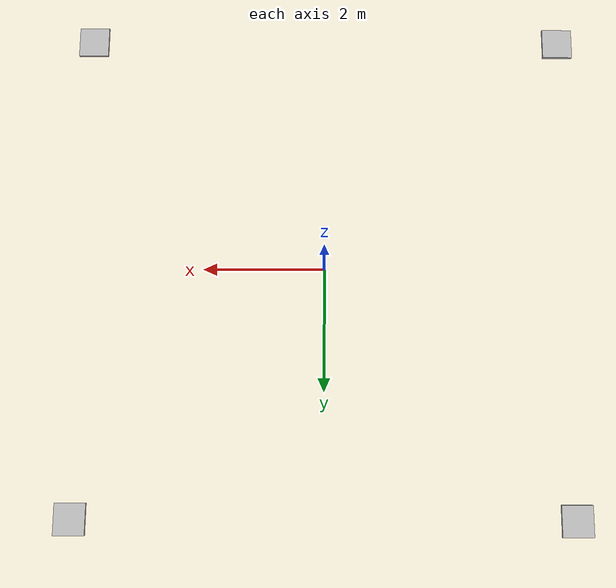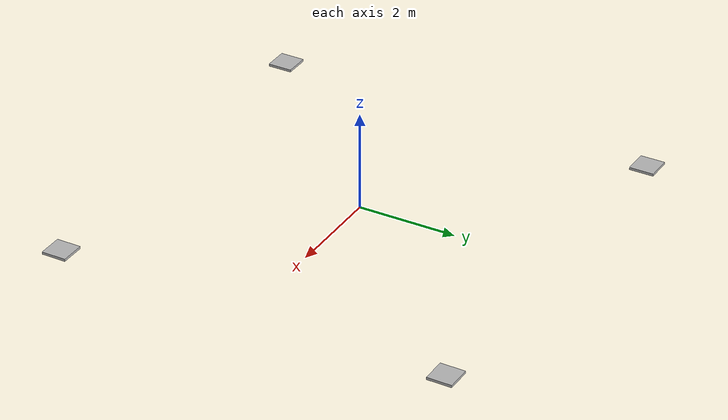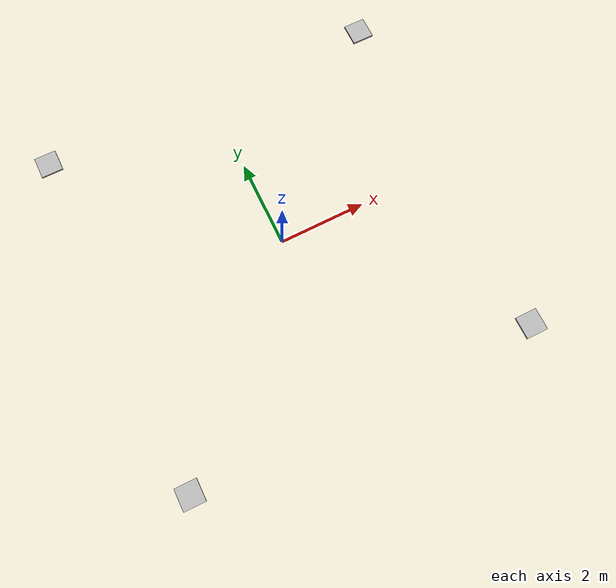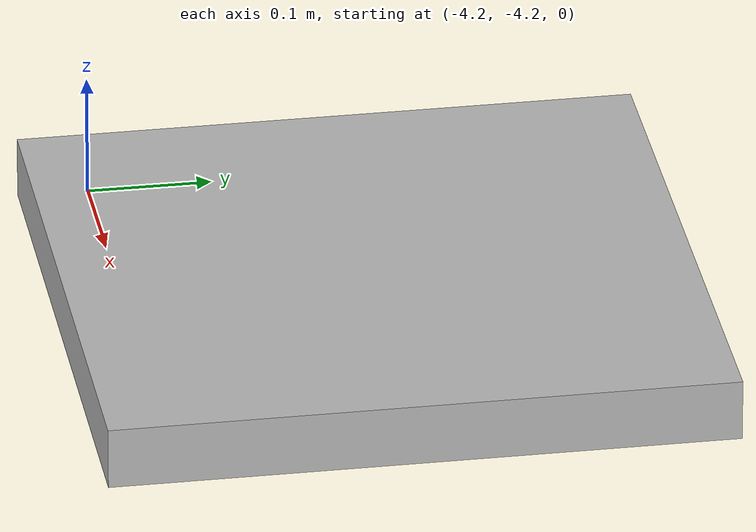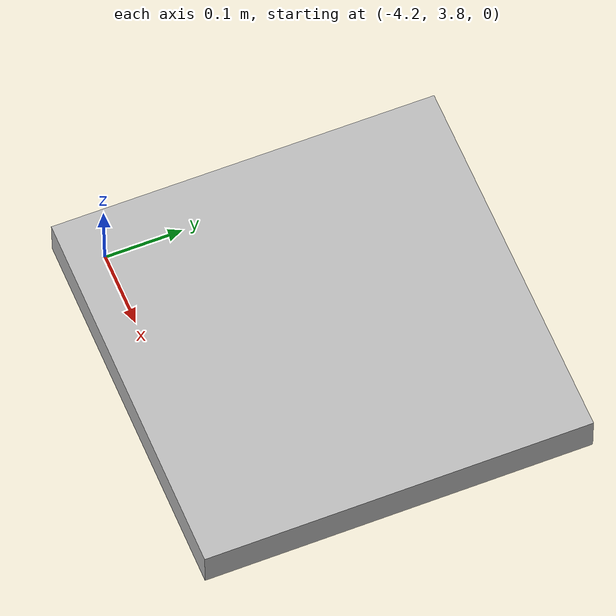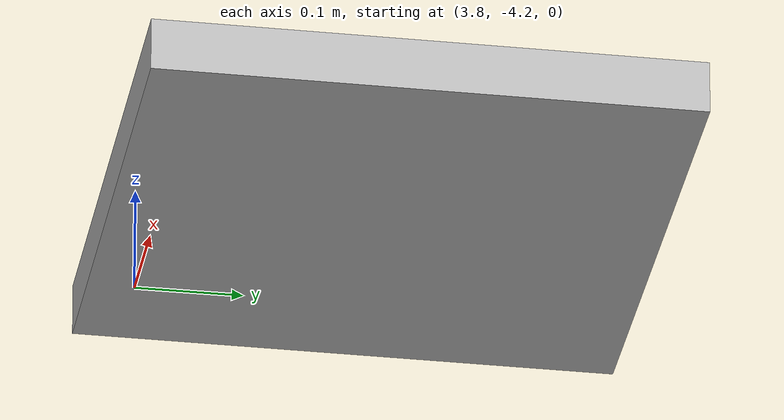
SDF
<?xml version='1.0'?>
<sdf version='1.6'>
  <model name='create_april_tags'>
    <static>1</static>

    <link name='AprilTag1'>
      <pose>4 4 0 0 0 0</pose>
      <self_collide>0</self_collide>
      <kinematic>0</kinematic>
      <visual name='AprilTag1_Visual'>
        <geometry>
          <box>
            <size>0.5 0.5 0.05 </size>
          </box>
        </geometry>
        <material>
          <script>
            <uri>model://create_april_tags/materials/scripts </uri>
            <uri>model://create_april_tags/materials/textures </uri>
            <name>AprilTag1</name>
          </script>
        </material>
        <cast_shadows>1</cast_shadows>
        <transparency>0</transparency>
      </visual>
    </link>

    <link name='AprilTag2'>
      <pose>4 -4 0 0 0 0</pose>
      <self_collide>0</self_collide>
      <kinematic>0</kinematic>
      <visual name='AprilTag2_Visual'>
        <geometry>
          <box>
            <size>0.5 0.5 0.05 </size>
          </box>
        </geometry>
        <material>
          <script>
            <uri>model://create_april_tags/materials/scripts/create_april_tags.material </uri>
            <name>AprilTag2</name>
          </script>
        </material>
        <cast_shadows>1</cast_shadows>
        <transparency>0</transparency>
      </visual>
    </link>

    <link name='AprilTag3'>
      <pose>-4 4 0 0 0 0</pose>
      <self_collide>0</self_collide>
      <kinematic>0</kinematic>
      <visual name='AprilTag3_Visual'>
        <geometry>
          <box>
            <size>0.5 0.5 0.05 </size>
          </box>
        </geometry>
        <material>
          <script>
            <uri>model://create_april_tags/materials/scripts/create_april_tags.material </uri>
            <name>AprilTag3</name>
          </script>
        </material>
        <cast_shadows>1</cast_shadows>
        <transparency>0</transparency>
      </visual>
    </link>

    <link name='AprilTag4'>
      <pose>-4 -4 0 0 0 0</pose>
      <self_collide>0</self_collide>
      <kinematic>0</kinematic>
      <visual name='AprilTag4_Visual'>
        <geometry>
          <box>
            <size>0.5 0.5 0.05 </size>
          </box>
        </geometry>
        <material>
          <script>
            <uri>model://create_april_tags/materials/scripts/create_april_tags.material </uri>
            <name>AprilTag4</name>
          </script>
        </material>
        <cast_shadows>1</cast_shadows>
        <transparency>0</transparency>
      </visual>
    </link>

  </model>
</sdf>
